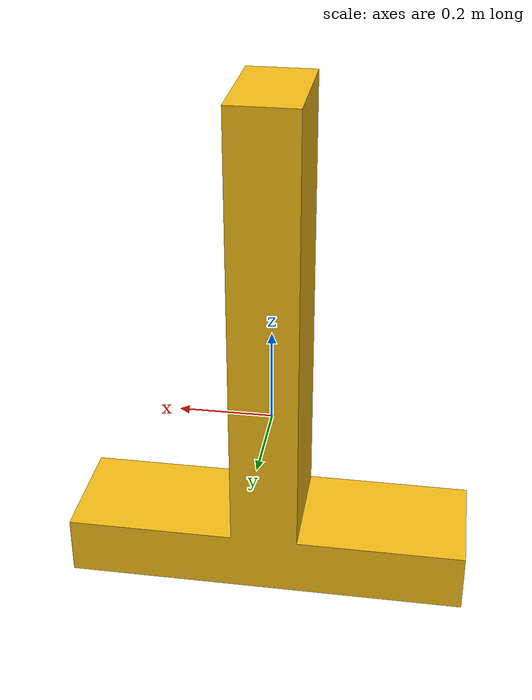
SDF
<sdf version="1.7">
  <model name="T">
    <link name="base_link">
      <inertial>
        <mass>1.0</mass>
        <inertia>
          <ixx>4.122e-01</ixx>
          <ixy>0.000e+00</ixy>
          <ixz>0.000e+00</ixz>
          <iyy>6.373e-01</iyy>
          <iyz>0.000e+00</iyz>
          <izz>2.667e-01</izz>
        </inertia>
      </inertial>
      <visual name="T_visual">
        <geometry>
          <mesh>
            <scale>1 1 1</scale>
            <uri>T_processed.obj</uri>
          </mesh>
        </geometry>
        <material>
          <diffuse>0.96 0.74 0.086 1.0</diffuse>
        </material>
      </visual>
      <collision name="T_collision">
        <pose>7.588e-04 0.000e+00 3.528e-01 0 0 0</pose>
        <geometry>
          <box>
            <size>1.718e+00 5.000e-01 2.167e+00</size>
          </box>
        </geometry>
      </collision>
    </link>
  </model>
</sdf>
